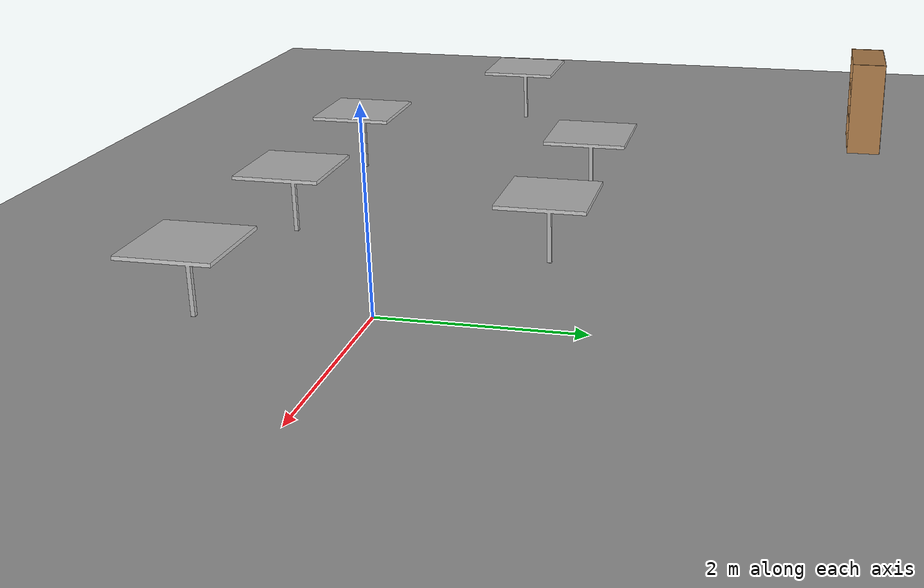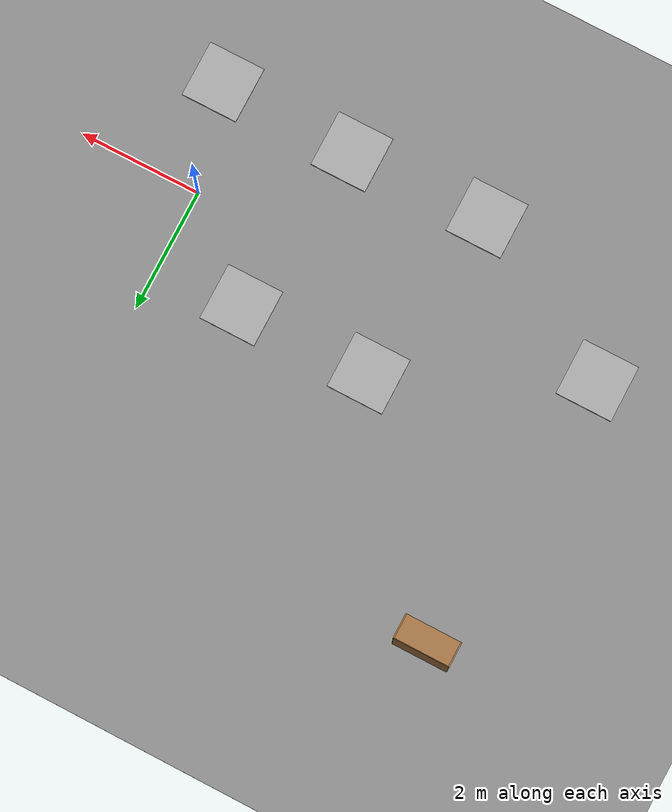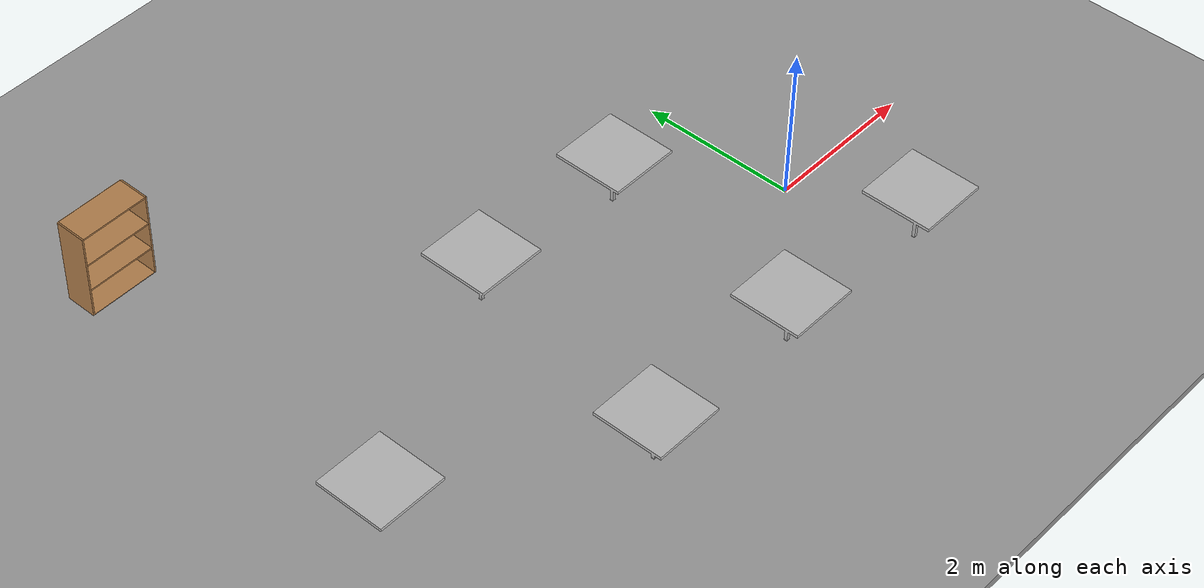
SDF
<sdf version="1.7">
 <world name="default">
  <light name="sun" type="directional">
   <pose>0 0 10 0 -0 0</pose>
   <diffuse>0.8 0.8 0.8 1</diffuse>
   <specular>0.2 0.2 0.2 1</specular>
   <attenuation>
    <range>1000</range>
    <constant>0.9</constant>
    <linear>0.01</linear>
    <quadratic>0.001</quadratic>
   </attenuation>
   <direction>-0.5 0.1 -0.9</direction>
   <spot><inner_angle>0</inner_angle><outer_angle>0</outer_angle><falloff>0</falloff></spot>
  </light>
  <model name="ground_plane">
   <static>1</static>
   <link name="link">
    <collision name="collision">
     <geometry><plane><normal>0 0 1</normal><size>100 100</size></plane></geometry>
     <surface>
      <contact><collide_bitmask>65535</collide_bitmask></contact>
      <friction><ode><mu>100</mu><mu2>50</mu2></ode></friction>
     </surface>
    </collision>
    <visual name="visual">
     <cast_shadows>0</cast_shadows>
     <geometry><plane><normal>0 0 1</normal><size>100 100</size></plane></geometry>
     <material>
      <script><uri>file://media/materials/scripts/gazebo.material</uri><name>Gazebo/Grey</name></script>
     </material>
    </visual>
   </link>
  </model>
  <gravity>0 0 -9.8</gravity>
  <magnetic_field>6e-06 2.3e-05 -4.2e-05</magnetic_field>
  <atmosphere type="adiabatic"/>
  <physics type="ode">
   <max_step_size>0.001</max_step_size>
   <real_time_factor>1</real_time_factor>
   <real_time_update_rate>1000</real_time_update_rate>
  </physics>
  <scene><ambient>0.4 0.4 0.4 1</ambient><background>0.7 0.7 0.7 1</background><shadows>1</shadows></scene>
  <spherical_coordinates>
   <surface_model>EARTH_WGS84</surface_model>
   <latitude_deg>0</latitude_deg>
   <longitude_deg>0</longitude_deg>
   <elevation>0</elevation>
   <heading_deg>0</heading_deg>
  </spherical_coordinates>
  <model name="ground_plane_0">
   <static>1</static>
   <link name="link">
    <collision name="collision">
     <geometry><plane><normal>0 0 1</normal><size>100 100</size></plane></geometry>
     <surface>
      <contact><collide_bitmask>65535</collide_bitmask></contact>
      <friction><ode><mu>100</mu><mu2>50</mu2></ode></friction>
     </surface>
    </collision>
    <visual name="visual">
     <cast_shadows>0</cast_shadows>
     <geometry><plane><normal>0 0 1</normal><size>100 100</size></plane></geometry>
     <material>
      <script><uri>file://media/materials/scripts/gazebo.material</uri><name>Gazebo/Grey</name></script>
     </material>
    </visual>
   </link>
   <pose>0.524432 -1.37905 0 0 -0 0</pose>
  </model>
  <model name="cafe_table_0">
   <static>1</static>
   <link name="link">
    <collision name="surface">
     <pose>0 0 0.755 0 -0 0</pose>
     <geometry><box><size>0.913 0.913 0.04</size></box></geometry>
    </collision>
    <collision name="column">
     <pose>0 0 0.37 0 -0 0</pose>
     <geometry><box><size>0.042 0.042 0.74</size></box></geometry>
    </collision>
    <collision name="base">
     <pose>0 0 0.02 0 -0 0</pose>
     <geometry><box><size>0.56 0.56 0.04</size></box></geometry>
    </collision>
    <visual name="visual">
     <geometry><mesh><uri>model://cafe_table/meshes/cafe_table.dae</uri></mesh></geometry>
    </visual>
   </link>
   <pose>0.368118 -1.5519 0 0 -0 0</pose>
  </model>
  <model name="cafe_table_1">
   <static>1</static>
   <link name="link">
    <collision name="surface">
     <pose>0 0 0.755 0 -0 0</pose>
     <geometry><box><size>0.913 0.913 0.04</size></box></geometry>
    </collision>
    <collision name="column">
     <pose>0 0 0.37 0 -0 0</pose>
     <geometry><box><size>0.042 0.042 0.74</size></box></geometry>
    </collision>
    <collision name="base">
     <pose>0 0 0.02 0 -0 0</pose>
     <geometry><box><size>0.56 0.56 0.04</size></box></geometry>
    </collision>
    <visual name="visual">
     <geometry><mesh><uri>model://cafe_table/meshes/cafe_table.dae</uri></mesh></geometry>
    </visual>
   </link>
   <pose>-1.8442 -1.50082 0 0 -0 0</pose>
  </model>
  <model name="cafe_table_2">
   <static>1</static>
   <link name="link">
    <collision name="surface">
     <pose>0 0 0.755 0 -0 0</pose>
     <geometry><box><size>0.913 0.913 0.04</size></box></geometry>
    </collision>
    <collision name="column">
     <pose>0 0 0.37 0 -0 0</pose>
     <geometry><box><size>0.042 0.042 0.74</size></box></geometry>
    </collision>
    <collision name="base">
     <pose>0 0 0.02 0 -0 0</pose>
     <geometry><box><size>0.56 0.56 0.04</size></box></geometry>
    </collision>
    <visual name="visual">
     <geometry><mesh><uri>model://cafe_table/meshes/cafe_table.dae</uri></mesh></geometry>
    </visual>
   </link>
   <pose>-4.09751 -1.54487 0 0 -0 0</pose>
  </model>
  <model name="cafe_table_2_clone">
   <static>1</static>
   <link name="link">
    <collision name="surface">
     <pose>0 0 0.755 0 -0 0</pose>
     <geometry><box><size>0.913 0.913 0.04</size></box></geometry>
    </collision>
    <collision name="column">
     <pose>0 0 0.37 0 -0 0</pose>
     <geometry><box><size>0.042 0.042 0.74</size></box></geometry>
    </collision>
    <collision name="base">
     <pose>0 0 0.02 0 -0 0</pose>
     <geometry><box><size>0.56 0.56 0.04</size></box></geometry>
    </collision>
    <visual name="visual">
     <geometry><mesh><uri>model://cafe_table/meshes/cafe_table.dae</uri></mesh></geometry>
    </visual>
   </link>
   <pose>-6.66701 -0.118348 0 0 -0 0</pose>
  </model>
  <model name="cafe_table_2_clone_1">
   <static>1</static>
   <link name="link">
    <collision name="surface">
     <pose>0 0 0.755 0 -0 0</pose>
     <geometry><box><size>0.913 0.913 0.04</size></box></geometry>
    </collision>
    <collision name="column">
     <pose>0 0 0.37 0 -0 0</pose>
     <geometry><box><size>0.042 0.042 0.74</size></box></geometry>
    </collision>
    <collision name="base">
     <pose>0 0 0.02 0 -0 0</pose>
     <geometry><box><size>0.56 0.56 0.04</size></box></geometry>
    </collision>
    <visual name="visual">
     <geometry><mesh><uri>model://cafe_table/meshes/cafe_table.dae</uri></mesh></geometry>
    </visual>
   </link>
   <pose>-1.47227 1.32895 0 0 -0 0</pose>
  </model>
  <model name="cafe_table_2_clone_2">
   <static>1</static>
   <link name="link">
    <collision name="surface">
     <pose>0 0 0.755 0 -0 0</pose>
     <geometry><box><size>0.913 0.913 0.04</size></box></geometry>
    </collision>
    <collision name="column">
     <pose>0 0 0.37 0 -0 0</pose>
     <geometry><box><size>0.042 0.042 0.74</size></box></geometry>
    </collision>
    <collision name="base">
     <pose>0 0 0.02 0 -0 0</pose>
     <geometry><box><size>0.56 0.56 0.04</size></box></geometry>
    </collision>
    <visual name="visual">
     <geometry><mesh><uri>model://cafe_table/meshes/cafe_table.dae</uri></mesh></geometry>
    </visual>
   </link>
   <pose>-3.62163 1.35628 0 0 -0 0</pose>
  </model>
  <model name="bookshelf">
   <static>1</static>
   <link name="link">
    <inertial><mass>1</mass></inertial>
    <collision name="back">
     <pose>0 0.005 0.6 0 -0 0</pose>
     <geometry><box><size>0.9 0.01 1.2</size></box></geometry>
    </collision>
    <visual name="visual1">
     <pose>0 0.005 0.6 0 -0 0</pose>
     <geometry><box><size>0.9 0.01 1.2</size></box></geometry>
     <material>
      <script><uri>file://media/materials/scripts/gazebo.material</uri><name>Gazebo/Wood</name></script>
     </material>
    </visual>
    <collision name="left_side">
     <pose>0.45 -0.195 0.6 0 -0 0</pose>
     <geometry><box><size>0.02 0.4 1.2</size></box></geometry>
    </collision>
    <visual name="visual2">
     <pose>0.45 -0.195 0.6 0 -0 0</pose>
     <geometry><box><size>0.02 0.4 1.2</size></box></geometry>
     <material>
      <script><uri>file://media/materials/scripts/gazebo.material</uri><name>Gazebo/Wood</name></script>
     </material>
    </visual>
    <collision name="right_side">
     <pose>-0.45 -0.195 0.6 0 -0 0</pose>
     <geometry><box><size>0.02 0.4 1.2</size></box></geometry>
    </collision>
    <visual name="visual3">
     <pose>-0.45 -0.195 0.6 0 -0 0</pose>
     <geometry><box><size>0.02 0.4 1.2</size></box></geometry>
     <material>
      <script><uri>file://media/materials/scripts/gazebo.material</uri><name>Gazebo/Wood</name></script>
     </material>
    </visual>
    <collision name="bottom">
     <pose>0 -0.195 0.03 0 -0 0</pose>
     <geometry><box><size>0.88 0.4 0.06</size></box></geometry>
    </collision>
    <visual name="visual4">
     <pose>0 -0.195 0.03 0 -0 0</pose>
     <geometry><box><size>0.88 0.4 0.06</size></box></geometry>
     <material>
      <script><uri>file://media/materials/scripts/gazebo.material</uri><name>Gazebo/Wood</name></script>
     </material>
    </visual>
    <collision name="top">
     <pose>0 -0.195 1.19 0 -0 0</pose>
     <geometry><box><size>0.88 0.4 0.02</size></box></geometry>
    </collision>
    <visual name="visual5">
     <pose>0 -0.195 1.19 0 -0 0</pose>
     <geometry><box><size>0.88 0.4 0.02</size></box></geometry>
     <material>
      <script><uri>file://media/materials/scripts/gazebo.material</uri><name>Gazebo/Wood</name></script>
     </material>
    </visual>
    <collision name="low_shelf">
     <pose>0 -0.195 0.43 0 -0 0</pose>
     <geometry><box><size>0.88 0.4 0.02</size></box></geometry>
    </collision>
    <visual name="visual6">
     <pose>0 -0.195 0.43 0 -0 0</pose>
     <geometry><box><size>0.88 0.4 0.02</size></box></geometry>
     <material>
      <script><uri>file://media/materials/scripts/gazebo.material</uri><name>Gazebo/Wood</name></script>
     </material>
    </visual>
    <collision name="high_shelf">
     <pose>0 -0.195 0.8 0 -0 0</pose>
     <geometry><box><size>0.88 0.4 0.02</size></box></geometry>
    </collision>
    <visual name="visual7">
     <pose>0 -0.195 0.8 0 -0 0</pose>
     <geometry><box><size>0.88 0.4 0.02</size></box></geometry>
     <material>
      <script><uri>file://media/materials/scripts/gazebo.material</uri><name>Gazebo/Wood</name></script>
     </material>
    </visual>
   </link>
   <pose>-6.21797 4.68451 0 0 -0 0</pose>
  </model>
 </world>
</sdf>
